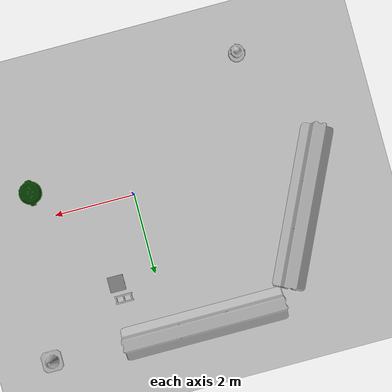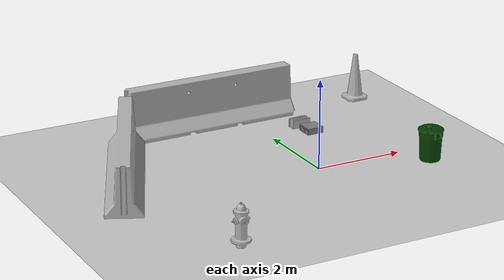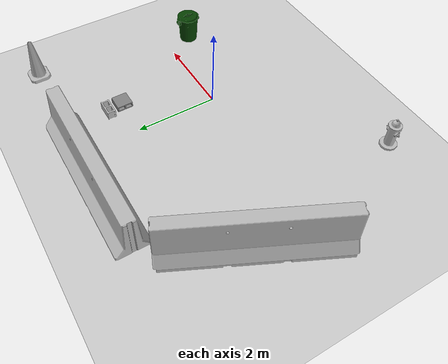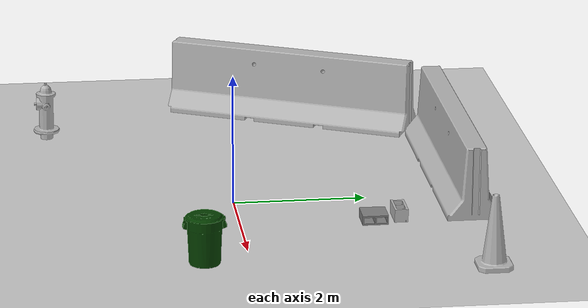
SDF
<sdf version="1.4">
 <world name="default">
  <light name="sun" type="directional">
   <pose>0 0 10 0 -0 0</pose>
   <diffuse>0.8 0.8 0.8 1</diffuse>
   <specular>0.2 0.2 0.2 1</specular>
   <attenuation>
    <range>1000</range>
    <constant>0.9</constant>
    <linear>0.01</linear>
    <quadratic>0.001</quadratic>
   </attenuation>
   <direction>-0.5 0.1 -0.9</direction>
  </light>
  <model name="ground_plane">
   <static>1</static>
   <link name="link">
    <collision name="collision">
     <geometry><plane><normal>0 0 1</normal><size>100 100</size></plane></geometry>
     <surface><friction><ode><mu>100</mu><mu2>50</mu2></ode></friction></surface>
    </collision>
    <visual name="visual">
     <cast_shadows>0</cast_shadows>
     <geometry><plane><normal>0 0 1</normal><size>100 100</size></plane></geometry>
     <material>
      <script><uri>file://media/materials/scripts/gazebo.material</uri><name>Gazebo/Grey</name></script>
     </material>
    </visual>
    <velocity_decay><linear>0</linear><angular>0</angular></velocity_decay>
   </link>
  </model>
  <physics type="ode">
   <max_step_size>0.001</max_step_size>
   <real_time_factor>1</real_time_factor>
   <real_time_update_rate>1000</real_time_update_rate>
   <gravity>0 0 -9.8</gravity>
  </physics>
  <scene><ambient>0.4 0.4 0.4 1</ambient><background>0.7 0.7 0.7 1</background><shadows>1</shadows></scene>
  <spherical_coordinates>
   <surface_model>EARTH_WGS84</surface_model>
   <latitude_deg>0</latitude_deg>
   <longitude_deg>0</longitude_deg>
   <elevation>0</elevation>
   <heading_deg>0</heading_deg>
  </spherical_coordinates>
  <model name="jersey_barrier_0">
   <static>1</static>
   <link name="link">
    <visual name="visual">
     <geometry><mesh><uri>model://jersey_barrier/meshes/jersey_barrier.dae</uri></mesh></geometry>
    </visual>
    <collision name="upright">
     <pose>0 0 0.5715 0 -0 0</pose>
     <geometry><box><size>4.06542 0.3063 1.143</size></box></geometry>
    </collision>
    <collision name="base">
     <pose>0 0 0.032258 0 -0 0</pose>
     <geometry><box><size>4.06542 0.8107 0.064516</size></box></geometry>
    </collision>
    <collision name="base2">
     <pose>0 0 0.1 0 -0 0</pose>
     <geometry><box><size>4.06542 0.65 0.1</size></box></geometry>
    </collision>
    <collision name="base3">
     <pose>0 0 0.2 0 -0 0</pose>
     <geometry><box><size>4.06542 0.5 0.1</size></box></geometry>
    </collision>
    <collision name="left-angle">
     <pose>0 -0.224 0.2401 0.9 -0 0</pose>
     <geometry><box><size>4.06542 0.5 0.064516</size></box></geometry>
    </collision>
    <collision name="right-angle">
     <pose>0 0.224 0.2401 -0.9 0 0</pose>
     <geometry><box><size>4.06542 0.5 0.064516</size></box></geometry>
    </collision>
    <velocity_decay><linear>0</linear><angular>0</angular></velocity_decay>
   </link>
   <pose>-3.91294 1.36325 0 0 -0 1.12874</pose>
  </model>
  <model name="cinder_block">
   <link name="link">
    <inertial>
     <pose>0 0 0.1016 0 -0 0</pose>
     <mass>5</mass>
     <inertia>
      <ixx>0.028705</ixx>
      <ixy>0</ixy>
      <iyy>0.073708</iyy>
      <ixz>0</ixz>
      <iyz>0</iyz>
      <izz>0.06908</izz>
     </inertia>
    </inertial>
    <visual name="visual">
     <geometry><mesh><uri>model://cinder_block/meshes/cinder_block.dae</uri></mesh></geometry>
    </visual>
    <collision name="left">
     <pose>0 -0.08465 0.1016 0 -0 0</pose>
     <geometry><box><size>0.43495 0.0339 0.2032</size></box></geometry>
     <surface>
      <contact><ode><max_vel>0.1</max_vel><min_depth>0.001</min_depth></ode></contact>
      <friction><ode><mu>1</mu><mu2>1</mu2></ode></friction>
     </surface>
    </collision>
    <collision name="right">
     <pose>0 0.08465 0.1016 0 -0 0</pose>
     <geometry><box><size>0.43495 0.0339 0.2032</size></box></geometry>
     <surface>
      <contact><ode><max_vel>0.1</max_vel><min_depth>0.001</min_depth></ode></contact>
      <friction><ode><mu>1</mu><mu2>1</mu2></ode></friction>
     </surface>
    </collision>
    <collision name="front">
     <pose>0.18625 0 0.1016 0 -0 0</pose>
     <geometry><box><size>0.0339 0.1354 0.203</size></box></geometry>
     <surface>
      <contact><ode><max_vel>0.1</max_vel><min_depth>0.001</min_depth></ode></contact>
      <friction><ode><mu>1</mu><mu2>1</mu2></ode></friction>
     </surface>
    </collision>
    <collision name="middle">
     <pose>0 0 0.1016 0 -0 0</pose>
     <geometry><box><size>0.0339 0.1354 0.203</size></box></geometry>
     <surface>
      <contact><ode><max_vel>0.1</max_vel><min_depth>0.001</min_depth></ode></contact>
      <friction><ode><mu>1</mu><mu2>1</mu2></ode></friction>
     </surface>
    </collision>
    <collision name="back">
     <pose>-0.18625 0 0.1016 0 -0 0</pose>
     <geometry><box><size>0.0339 0.1354 0.203</size></box></geometry>
     <surface>
      <contact><ode><max_vel>0.1</max_vel><min_depth>0.001</min_depth></ode></contact>
      <friction><ode><mu>1</mu><mu2>1</mu2></ode></friction>
     </surface>
    </collision>
    <velocity_decay><linear>0</linear><angular>0</angular></velocity_decay>
   </link>
   <pose>0.890108 2.39232 -1.5e-05 -6e-06 1.8e-05 -1.9e-05</pose>
   <static>0</static>
  </model>
  <model name="cinder_block_wide">
   <link name="link">
    <inertial>
     <pose>0 0 0.0714375 0 -0 0</pose>
     <mass>5</mass>
     <inertia>
      <ixx>0.0681466</ixx>
      <ixy>0</ixy>
      <iyy>0.0681466</iyy>
      <ixz>0</ixz>
      <iyz>0</iyz>
      <izz>0.124808</izz>
     </inertia>
    </inertial>
    <visual name="visual">
     <geometry><mesh><uri>model://cinder_block_wide/meshes/cinder_block_wide.dae</uri></mesh></geometry>
    </visual>
    <collision name="top">
     <pose>0 0 0.130175 0 -0 0</pose>
     <geometry><box><size>0.387354 0.387354 0.0254</size></box></geometry>
     <surface>
      <contact><ode><max_vel>0.1</max_vel><min_depth>0.001</min_depth></ode></contact>
      <friction><ode><mu>1</mu><mu2>1</mu2></ode></friction>
     </surface>
    </collision>
    <collision name="bottom">
     <pose>0 0 0.0127 0 -0 0</pose>
     <geometry><box><size>0.387354 0.387354 0.0254</size></box></geometry>
     <surface>
      <contact><ode><max_vel>0.1</max_vel><min_depth>0.001</min_depth></ode></contact>
      <friction><ode><mu>1</mu><mu2>1</mu2></ode></friction>
     </surface>
    </collision>
    <collision name="left">
     <pose>0 -0.183355 0.0714375 0 -0 0</pose>
     <geometry><box><size>0.387354 0.020643 0.092075</size></box></geometry>
     <surface>
      <contact><ode><max_vel>0.1</max_vel><min_depth>0.001</min_depth></ode></contact>
      <friction><ode><mu>1</mu><mu2>1</mu2></ode></friction>
     </surface>
    </collision>
    <collision name="right">
     <pose>0 0.183355 0.0714375 0 -0 0</pose>
     <geometry><box><size>0.387354 0.020643 0.092075</size></box></geometry>
     <surface>
      <contact><ode><max_vel>0.1</max_vel><min_depth>0.001</min_depth></ode></contact>
      <friction><ode><mu>1</mu><mu2>1</mu2></ode></friction>
     </surface>
    </collision>
    <collision name="middle">
     <pose>0 0 0.0714375 0 -0 0</pose>
     <geometry><box><size>0.387354 0.0254 0.092075</size></box></geometry>
     <surface>
      <contact><ode><max_vel>0.1</max_vel><min_depth>0.001</min_depth></ode></contact>
      <friction><ode><mu>1</mu><mu2>1</mu2></ode></friction>
     </surface>
    </collision>
    <velocity_decay><linear>0</linear><angular>0</angular></velocity_decay>
   </link>
   <pose>0.974747 1.99638 -1e-05 0 -0 0</pose>
   <static>0</static>
  </model>
  <model name="fire_hydrant">
   <static>1</static>
   <link name="link">
    <collision name="collision">
     <geometry><mesh><uri>model://fire_hydrant/meshes/fire_hydrant.dae</uri></mesh></geometry>
    </collision>
    <visual name="visual">
     <geometry><mesh><uri>model://fire_hydrant/meshes/fire_hydrant.dae</uri></mesh></geometry>
    </visual>
    <velocity_decay><linear>0</linear><angular>0</angular></velocity_decay>
   </link>
   <pose>-3.31846 -2.68229 0 0 -0 0</pose>
  </model>
  <model name="first_2015_trash_can">
   <link name="link">
    <inertial>
     <pose>0 0 0.3683 0 -0 0</pose>
     <mass>4.83076</mass>
     <inertia>
      <ixx>0.281534</ixx>
      <ixy>0</ixy>
      <ixz>0</ixz>
      <iyy>0.281534</iyy>
      <iyz>0</iyz>
      <izz>0.126223</izz>
     </inertia>
    </inertial>
    <visual name="visual">
     <geometry><mesh><uri>model://first_2015_trash_can/meshes/trash_can.dae</uri></mesh></geometry>
    </visual>
    <collision name="collision">
     <geometry><mesh><uri>model://first_2015_trash_can/meshes/trash_can.dae</uri></mesh></geometry>
    </collision>
    <velocity_decay><linear>0</linear><angular>0</angular></velocity_decay>
   </link>
   <pose>2.39598 -0.658991 -4e-06 -5e-06 4e-06 -0.001163</pose>
   <static>0</static>
  </model>
  <model name="Construction Cone">
   <link name="link">
    <collision name="collision">
     <geometry>
      <mesh><scale>10 10 10</scale><uri>model://construction_cone/meshes/construction_cone.dae</uri></mesh>
     </geometry>
    </collision>
    <visual name="visual">
     <geometry>
      <mesh><scale>10 10 10</scale><uri>model://construction_cone/meshes/construction_cone.dae</uri></mesh>
     </geometry>
    </visual>
    <velocity_decay><linear>0</linear><angular>0</angular></velocity_decay>
    <inertial>
     <inertia><ixx>1</ixx><ixy>0</ixy><ixz>0</ixz><iyy>1</iyy><iyz>0</iyz><izz>1</izz></inertia>
     <mass>1</mass>
    </inertial>
   </link>
   <pose>2.98621 3.4209 -9e-06 -1e-06 1e-06 0</pose>
   <static>0</static>
  </model>
  <model name="jersey_barrier_1">
   <static>1</static>
   <link name="link">
    <visual name="visual">
     <geometry><mesh><uri>model://jersey_barrier/meshes/jersey_barrier.dae</uri></mesh></geometry>
    </visual>
    <collision name="upright">
     <pose>0 0 0.5715 0 -0 0</pose>
     <geometry><box><size>4.06542 0.3063 1.143</size></box></geometry>
    </collision>
    <collision name="base">
     <pose>0 0 0.032258 0 -0 0</pose>
     <geometry><box><size>4.06542 0.8107 0.064516</size></box></geometry>
    </collision>
    <collision name="base2">
     <pose>0 0 0.1 0 -0 0</pose>
     <geometry><box><size>4.06542 0.65 0.1</size></box></geometry>
    </collision>
    <collision name="base3">
     <pose>0 0 0.2 0 -0 0</pose>
     <geometry><box><size>4.06542 0.5 0.1</size></box></geometry>
    </collision>
    <collision name="left-angle">
     <pose>0 -0.224 0.2401 0.9 -0 0</pose>
     <geometry><box><size>4.06542 0.5 0.064516</size></box></geometry>
    </collision>
    <collision name="right-angle">
     <pose>0 0.224 0.2401 -0.9 0 0</pose>
     <geometry><box><size>4.06542 0.5 0.064516</size></box></geometry>
    </collision>
    <velocity_decay><linear>0</linear><angular>0</angular></velocity_decay>
   </link>
   <pose>-0.845558 3.4904 0 0 -0 0</pose>
  </model>
 </world>
</sdf>
